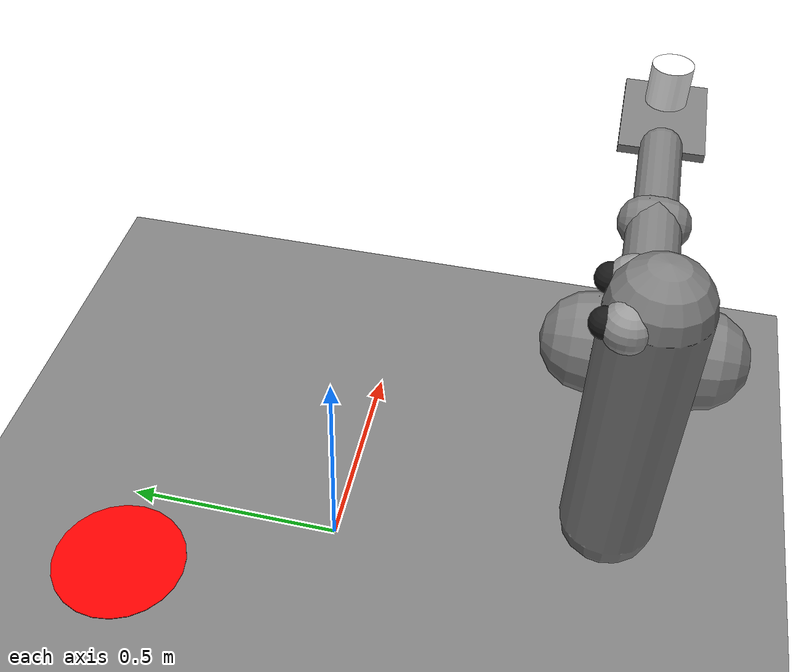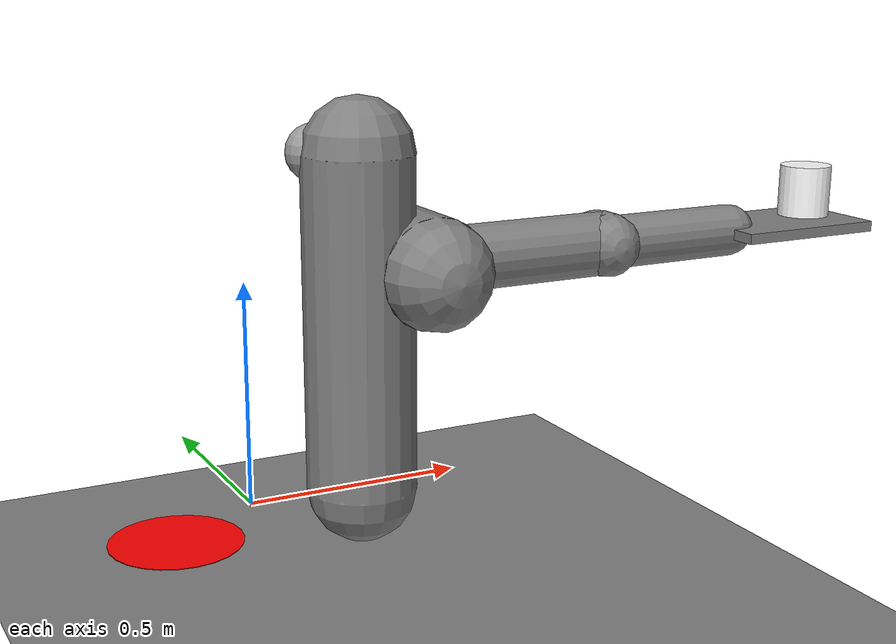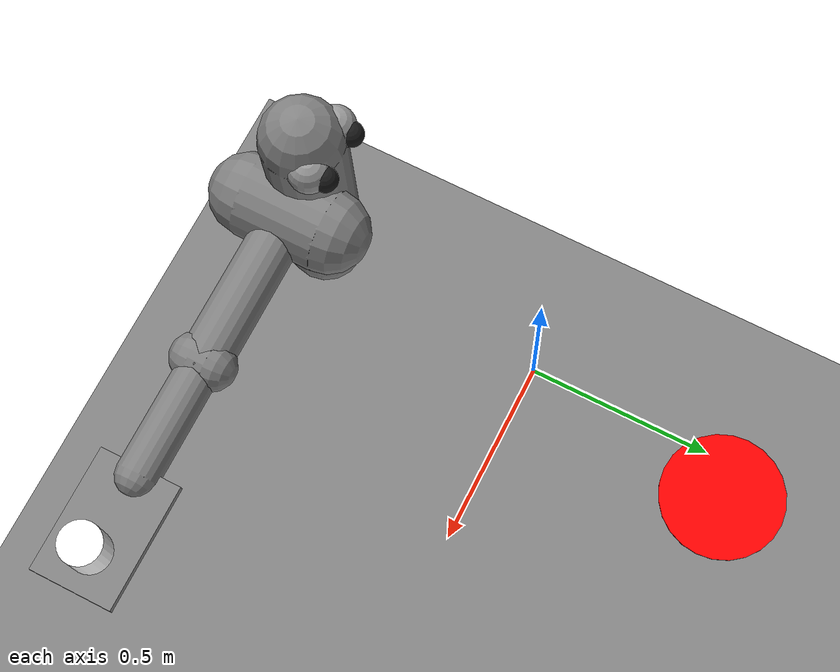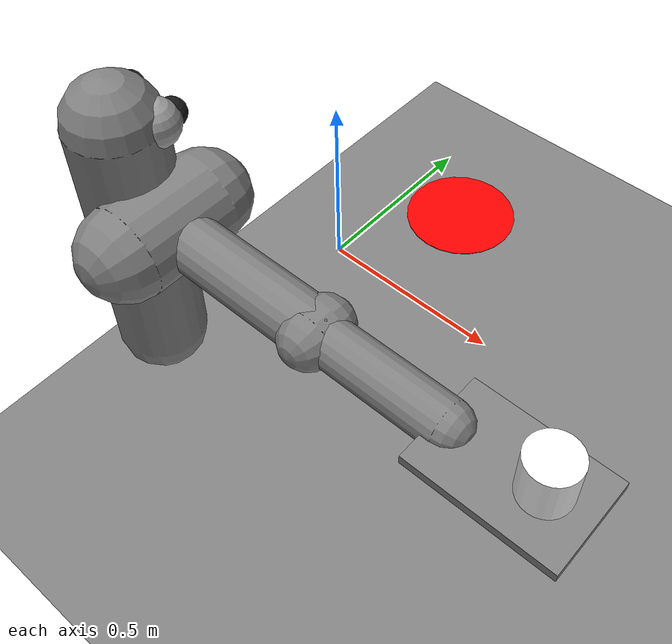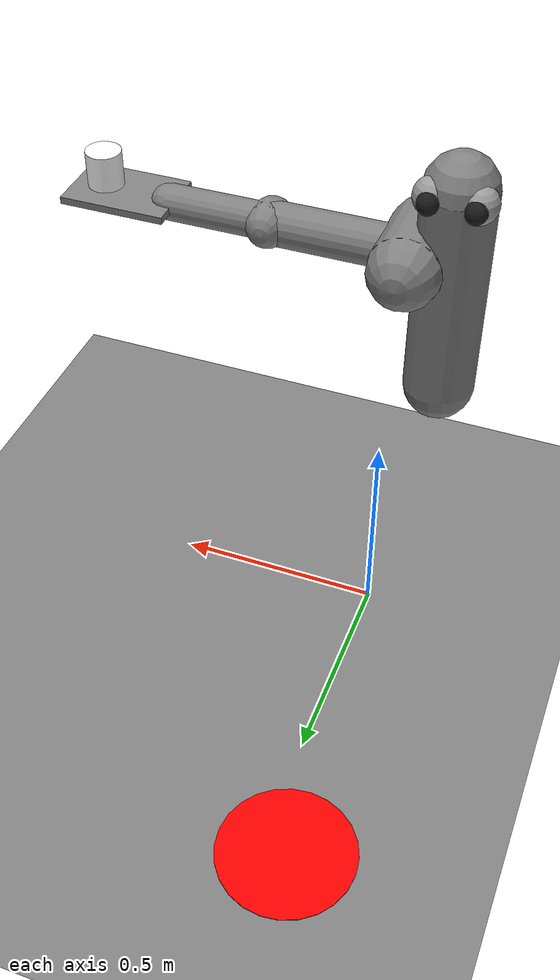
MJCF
<mujoco model="arm3d">
  <compiler inertiafromgeom="true" angle="radian" coordinate="local"/>
  <option timestep="0.01" gravity="0 0 -0.5" iterations="20" integrator="Euler" />

  <default>
    <joint armature='0.04' damping="1" limited="true"/>
    <geom friction=".8 .1 .1" density="300" margin="0.002" condim="1" contype="0" conaffinity="0"/>
    <camera pos="2.686 -0.634 0.628" xyaxes="-0.004 1.000 -0.000 -0.264 -0.001 0.965"/>
  </default>

  <worldbody>
    <light diffuse=".5 .5 .5" pos="0 0 3" dir="0 0 -1"/>
    <geom name="table" type="plane" pos="0 0.5 -0.325" size="2 2 0.1" contype="1" conaffinity="1"/>

    <body name="r_shoulder_pan_link" pos="0 -0.6 0.65">
      <geom name="e1" type="sphere" rgba="0.6 0.6 0.6 1" pos="-0.06 0.05 0.2" size="0.05" />
      <geom name="e2" type="sphere" rgba="0.6 0.6 0.6 1" pos=" 0.06 0.05 0.2" size="0.05" />
      <geom name="e1p" type="sphere" rgba="0.1 0.1 0.1 1" pos="-0.06 0.09 0.2" size="0.03" />
      <geom name="e2p" type="sphere" rgba="0.1 0.1 0.1 1" pos=" 0.06 0.09 0.2" size="0.03" />
      <geom name="sp" type="capsule" fromto="0 0 -0.4 0 0 0.2" size="0.1" />
      <joint name="r_shoulder_pan_joint" type="hinge" pos="0 0 0" axis="0 0 1" range="-2.2854 1.714602" damping="1.0" />

      <body name="r_shoulder_lift_link" pos="0.1 0 0">
        <geom name="sl" type="capsule" fromto="0 -0.1 0 0 0.1 0" size="0.1" />
        <joint name="r_shoulder_lift_joint" type="hinge" pos="0 0 0" axis="0 1 0" range="-0.5236 1.3963" damping="1.0" />

        <body name="r_upper_arm_roll_link" pos="0 0 0">
          <geom name="uar" type="capsule" fromto="-0.1 0 0 0.1 0 0" size="0.02" />

          <body name="r_upper_arm_link" pos="0 0 0">
            <geom name="ua" type="capsule" fromto="0 0 0 0.4 0 0" size="0.06" />

            <body name="r_elbow_flex_link" pos="0.4 0 0">
              <geom name="ef" type="capsule" fromto="0 -0.02 0 0.0 0.02 0" size="0.06" />
              <joint name="r_elbow_flex_joint" type="hinge" pos="0 0 0" axis="0 1 0" range="-2.3213 0" damping=".1" />

              <body name="r_forearm_roll_link" pos="0 0 0">
                <geom name="fr" type="capsule" fromto="-0.1 0 0 0.1 0 0" size="0.02" />

                <body name="r_forearm_link" pos="0 0 0">
                  <geom name="fa" type="capsule" fromto="0 0 0 0.291 0 0" size="0.05" />

                  <body name="r_wrist_flex_link" pos="0.321 0 0">
                    <geom name="wf" type="capsule" fromto="0 -0.02 0 0 0.02 0" size="0.01" />
                    <joint name="r_wrist_flex_joint" type="hinge" pos="0 0 0" axis="0 1 0" range="-1.4 0.7" damping=".1" />

                  <body name="r_wrist_roll_link" pos="0 0 0">
                      <joint name="r_wrist_roll_joint" type="hinge" pos="0 0 0" axis="1 0 0" range="-1.4 0.7" damping=".1" />
                      <body name="tips_arm" pos="0 0 0">
                        <geom type="box" pos="0.1 0 0" size="0.15 0.1 0.01" contype="1" conaffinity="1" />
                      </body>
                    </body>
                  </body>
                </body>
              </body>
            </body>
          </body>
        </body>
      </body>
    </body>

    <body name="object" pos="0.98 -0.6 0.715" >
      <geom rgba="1 1 1 0" type="sphere" size="0.05 0.05 0.05"/>
      <geom rgba="1 1 1 1" type="cylinder" size="0.05 0.05 0.05" contype="1" conaffinity="1"/>
      <joint name="obj_free" type="free" pos="0 0 0" range="-10.3213 10.3" damping="0.5"/>

    </body>

    <body name="goal" pos="0 0.6 -0.3230">
      <geom rgba="1 0 0 1" type="cylinder" size="0.18 0.001 0.1" density='0.00001' contype="0" conaffinity="0"/>
      <joint name="goal_slidex" type="slide" pos="0 0 0" axis="1 0 0" range="-10.3213 10.3" damping="0.5"/>
      <joint name="goal_slidey" type="slide" pos="0 0 0" axis="0 1 0" range="-10.3213 10.3" damping="0.5"/>
    </body>

  </worldbody>

  <actuator>
    <motor joint="r_shoulder_pan_joint" ctrlrange="-2.0 2.0" ctrllimited="true" />
    <motor joint="r_shoulder_lift_joint" ctrlrange="-2.0 2.0" ctrllimited="true" />
    <motor joint="r_elbow_flex_joint" ctrlrange="-2.0 2.0" ctrllimited="true" />
    <motor joint="r_wrist_flex_joint" ctrlrange="-2.0 2.0" ctrllimited="true" />
    <motor joint="r_wrist_roll_joint" ctrlrange="-2.0 2.0" ctrllimited="true" />
  </actuator>
</mujoco>
